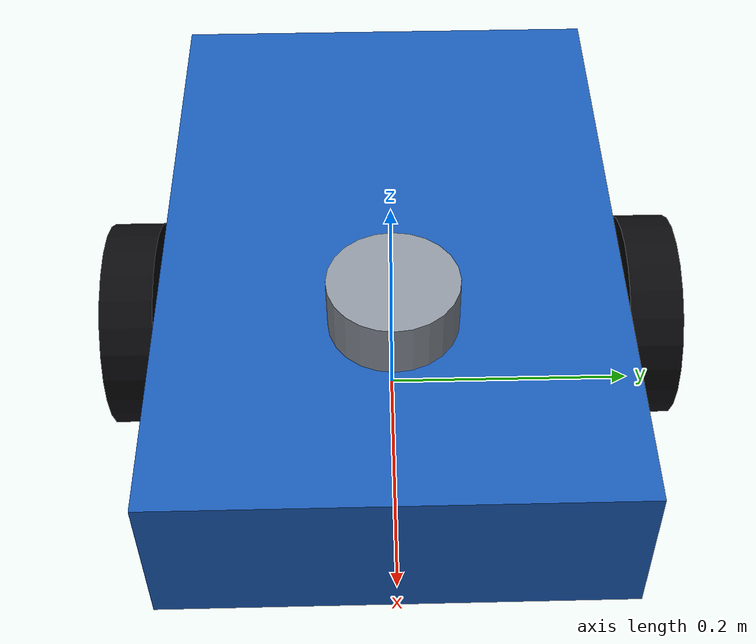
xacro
<?xml version="1.0"?>
<robot name="control_link_diffbot" xmlns:xacro="http://www.ros.org/wiki/xacro">
	<xacro:arg name="wheel_separation" default="0.40"/>
	<xacro:arg name="wheel_radius" default="0.08"/>
	<xacro:arg name="left_wheel_joint" default="left_wheel_joint"/>
	<xacro:arg name="right_wheel_joint" default="right_wheel_joint"/>
	<xacro:arg name="controller_node_fqn" default="/diff_drive_controller"/>
	<xacro:arg name="odometry_topic" default="/odom"/>
	<xacro:arg name="base_footprint_frame" default="base_footprint"/>
	<xacro:arg name="base_link_frame" default="base_link"/>
	<xacro:arg name="laser_frame" default="laser_link"/>
	<xacro:arg name="controller_config" default=""/>
	<xacro:arg name="hardware_plugin" default="gz_ros2_control/GazeboSimSystem"/>
	<xacro:arg name="hardware_component_name" default="ControlLinkExecutionSystem"/>
	<xacro:arg name="use_mock_hardware" default="false"/>
	<xacro:arg name="mock_fail_read_after_cycles" default="0"/>
	<xacro:arg name="mock_fail_write_after_cycles" default="0"/>

	<xacro:property name="wheel_width" value="0.04"/>
	<xacro:property name="base_length" value="0.50"/>
	<xacro:property name="base_width" value="0.34"/>
	<xacro:property name="base_height" value="0.12"/>
	<xacro:property name="base_center_z" value="0.12"/>

	<material name="guardian_blue">
		<color rgba="0.10 0.35 0.70 1.0"/>
	</material>
	<material name="wheel_black">
		<color rgba="0.04 0.04 0.05 1.0"/>
	</material>
	<material name="sensor_gray">
		<color rgba="0.55 0.58 0.62 1.0"/>
	</material>

	<!-- base_footprint 是地面投影坐标系，不参与刚体动力学 -->
	<link name="$(arg base_footprint_frame)"/>

	<joint name="base_footprint_joint" type="fixed">
		<parent link="$(arg base_footprint_frame)"/>
		<child link="$(arg base_link_frame)"/>
		<origin xyz="0 0 ${base_center_z}" rpy="0 0 0"/>
	</joint>

	<link name="$(arg base_link_frame)">
		<inertial>
			<mass value="8.0"/>
			<origin xyz="0 0 0" rpy="0 0 0"/>
			<inertia ixx="0.0867" ixy="0" ixz="0" iyy="0.1763" iyz="0" izz="0.2430"/>
		</inertial>
		<visual>
			<geometry>
				<box size="${base_length} ${base_width} ${base_height}"/>
			</geometry>
			<material name="guardian_blue"/>
		</visual>
		<collision>
			<geometry>
				<box size="${base_length} ${base_width} ${base_height}"/>
			</geometry>
		</collision>
	</link>

	<xacro:macro name="drive_wheel" params="side joint_name y_offset">
		<joint name="${joint_name}" type="continuous">
			<parent link="$(arg base_link_frame)"/>
			<child link="${side}_wheel_link"/>
			<origin xyz="0 ${y_offset} ${-base_center_z + float($(arg wheel_radius))}" rpy="0 0 0"/>
			<axis xyz="0 1 0"/>
			<dynamics damping="0.1" friction="0.0"/>
		</joint>

		<link name="${side}_wheel_link">
			<inertial>
				<mass value="0.6"/>
				<origin xyz="0 0 0" rpy="0 0 0"/>
				<inertia ixx="0.00108" ixy="0" ixz="0" iyy="0.00192" iyz="0" izz="0.00108"/>
			</inertial>
			<visual>
				<origin xyz="0 0 0" rpy="1.57079632679 0 0"/>
				<geometry>
					<cylinder radius="$(arg wheel_radius)" length="${wheel_width}"/>
				</geometry>
				<material name="wheel_black"/>
			</visual>
			<collision>
				<origin xyz="0 0 0" rpy="1.57079632679 0 0"/>
				<geometry>
					<cylinder radius="$(arg wheel_radius)" length="${wheel_width}"/>
				</geometry>
			</collision>
		</link>
	</xacro:macro>

	<xacro:drive_wheel
		side="left"
		joint_name="$(arg left_wheel_joint)"
		y_offset="${float($(arg wheel_separation)) / 2.0}"/>
	<xacro:drive_wheel
		side="right"
		joint_name="$(arg right_wheel_joint)"
		y_offset="${-float($(arg wheel_separation)) / 2.0}"/>

	<joint name="caster_joint" type="fixed">
		<parent link="$(arg base_link_frame)"/>
		<child link="caster_link"/>
		<origin xyz="-0.18 0 -0.08" rpy="0 0 0"/>
	</joint>
	<link name="caster_link">
		<inertial>
			<mass value="0.1"/>
			<origin xyz="0 0 0" rpy="0 0 0"/>
			<inertia ixx="0.000064" ixy="0" ixz="0" iyy="0.000064" iyz="0" izz="0.000064"/>
		</inertial>
		<visual>
			<geometry>
				<sphere radius="0.04"/>
			</geometry>
			<material name="sensor_gray"/>
		</visual>
		<collision>
			<geometry>
				<sphere radius="0.04"/>
			</geometry>
		</collision>
	</link>

	<joint name="laser_joint" type="fixed">
		<parent link="$(arg base_link_frame)"/>
		<child link="$(arg laser_frame)"/>
		<origin xyz="0.12 0 0.11" rpy="0 0 0"/>
	</joint>
	<link name="$(arg laser_frame)">
		<inertial>
			<mass value="0.2"/>
			<origin xyz="0 0 0" rpy="0 0 0"/>
			<inertia ixx="0.0001" ixy="0" ixz="0" iyy="0.0001" iyz="0" izz="0.0001"/>
		</inertial>
		<visual>
			<geometry>
				<cylinder radius="0.045" length="0.04"/>
			</geometry>
			<material name="sensor_gray"/>
		</visual>
		<collision>
			<geometry>
				<cylinder radius="0.045" length="0.04"/>
			</geometry>
		</collision>
	</link>

	<ros2_control name="$(arg hardware_component_name)" type="system">
		<hardware>
			<plugin>$(arg hardware_plugin)</plugin>
			<xacro:if value="$(arg use_mock_hardware)">
				<!-- joint 名和故障门由 launch 注入，URDF 不再拥有第二份运行配置 -->
				<param name="left_wheel_joint">$(arg left_wheel_joint)</param>
				<param name="right_wheel_joint">$(arg right_wheel_joint)</param>
				<param name="fail_read_after_cycles">$(arg mock_fail_read_after_cycles)</param>
				<param name="fail_write_after_cycles">$(arg mock_fail_write_after_cycles)</param>
			</xacro:if>
		</hardware>
		<joint name="$(arg left_wheel_joint)">
			<command_interface name="velocity"/>
			<state_interface name="position"/>
			<state_interface name="velocity"/>
		</joint>
		<joint name="$(arg right_wheel_joint)">
			<command_interface name="velocity"/>
			<state_interface name="position"/>
			<state_interface name="velocity"/>
		</joint>
	</ros2_control>

	<gazebo reference="$(arg laser_frame)">
		<sensor name="control_link_lidar" type="gpu_lidar">
			<topic>/scan</topic>
			<!-- Gazebo 默认使用作用域 sensor 名，显式绑定到 Profile 的 ROS frame -->
			<gz_frame_id>$(arg laser_frame)</gz_frame_id>
			<update_rate>10</update_rate>
			<always_on>true</always_on>
			<visualize>false</visualize>
			<lidar>
				<scan>
					<horizontal>
						<samples>360</samples>
						<resolution>1</resolution>
						<min_angle>-3.14159265359</min_angle>
						<max_angle>3.14159265359</max_angle>
					</horizontal>
				</scan>
				<range>
					<min>0.08</min>
					<max>12.0</max>
					<resolution>0.01</resolution>
				</range>
			</lidar>
		</sensor>
	</gazebo>

	<xacro:unless value="$(arg use_mock_hardware)">
		<gazebo>
			<plugin filename="gz_ros2_control-system" name="gz_ros2_control::GazeboSimROS2ControlPlugin">
				<robot_param>robot_description</robot_param>
				<robot_param_node>robot_state_publisher</robot_param_node>
				<parameters>$(arg controller_config)</parameters>
				<controller_manager_name>controller_manager</controller_manager_name>
				<ros>
					<!-- controller 的私有 odom Topic 映射到 Robot Profile 约定的执行反馈边界 -->
					<remapping>$(arg controller_node_fqn)/odom:=$(arg odometry_topic)</remapping>
				</ros>
			</plugin>
		</gazebo>
	</xacro:unless>
</robot>
